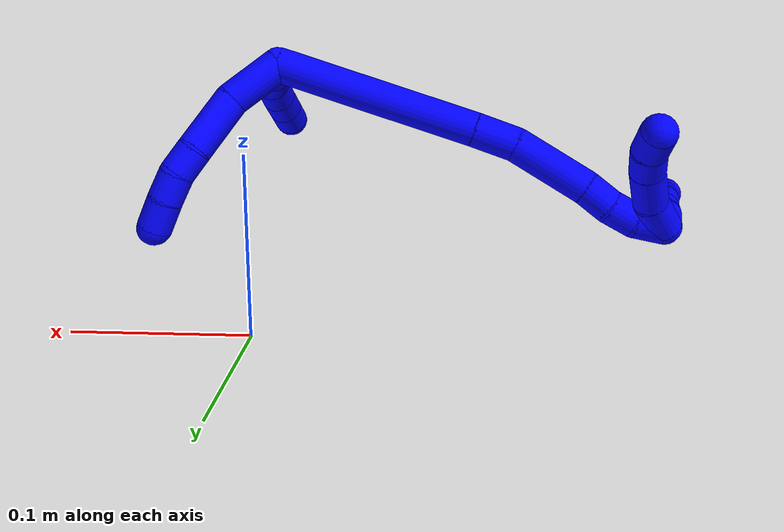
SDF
<sdf version="1.7">
 <world name="default">
  <model name="1">
   <static>0</static>
   <link name="1">
    <collision name="collision-cylinder-e_1_2_8">
     <pose>0.01848 0.000764 -0.009724 -3.06314 1.08515 -3.01159</pose>
     <geometry><cylinder><radius>0.0125</radius><length>0.041792</length></cylinder></geometry>
     <surface>
      <friction><ode><mu>1.16</mu><mu2>1.16</mu2><slip1>0</slip1><slip2>0</slip2></ode></friction>
      <contact><ode><kp>1e+06</kp><kd>1</kd><max_vel>0</max_vel><min_depth>0.001</min_depth></ode></contact>
     </surface>
    </collision>
    <visual name="visual-cylinder-e_1_2_8">
     <pose>0.01848 0.000764 -0.009724 -3.06314 1.08515 -3.01159</pose>
     <geometry><cylinder><radius>0.0125</radius><length>0.041792</length></cylinder></geometry>
     <material><ambient>0 0 1 1</ambient></material>
    </visual>
    <collision name="collision-cylinder-e_2_8_9">
     <pose>0.054802 -0.004232 -0.031572 2.69802 0.925812 2.29284</pose>
     <geometry><cylinder><radius>0.0125</radius><length>0.044657</length></cylinder></geometry>
     <surface>
      <friction><ode><mu>1.16</mu><mu2>1.16</mu2><slip1>0</slip1><slip2>0</slip2></ode></friction>
      <contact><ode><kp>1e+06</kp><kd>1</kd><max_vel>0</max_vel><min_depth>0.001</min_depth></ode></contact>
     </surface>
    </collision>
    <visual name="visual-cylinder-e_2_8_9">
     <pose>0.054802 -0.004232 -0.031572 2.69802 0.925812 2.29284</pose>
     <geometry><cylinder><radius>0.0125</radius><length>0.044657</length></cylinder></geometry>
     <material><ambient>0 0 1 1</ambient></material>
    </visual>
    <collision name="collision-cylinder-e_3_9_10">
     <pose>0.081734 -0.012491 -0.047685 2.58209 1.093 2.25915</pose>
     <geometry><cylinder><radius>0.0125</radius><length>0.02047</length></cylinder></geometry>
     <surface>
      <friction><ode><mu>1.16</mu><mu2>1.16</mu2><slip1>0</slip1><slip2>0</slip2></ode></friction>
      <contact><ode><kp>1e+06</kp><kd>1</kd><max_vel>0</max_vel><min_depth>0.001</min_depth></ode></contact>
     </surface>
    </collision>
    <visual name="visual-cylinder-e_3_9_10">
     <pose>0.081734 -0.012491 -0.047685 2.58209 1.093 2.25915</pose>
     <geometry><cylinder><radius>0.0125</radius><length>0.02047</length></cylinder></geometry>
     <material><ambient>0 0 1 1</ambient></material>
    </visual>
    <collision name="collision-cylinder-e_4_10_11">
     <pose>0.100137 -0.019161 -0.053563 1.99601 1.11384 1.5357</pose>
     <geometry><cylinder><radius>0.0125</radius><length>0.020759</length></cylinder></geometry>
     <surface>
      <friction><ode><mu>1.16</mu><mu2>1.16</mu2><slip1>0</slip1><slip2>0</slip2></ode></friction>
      <contact><ode><kp>1e+06</kp><kd>1</kd><max_vel>0</max_vel><min_depth>0.001</min_depth></ode></contact>
     </surface>
    </collision>
    <visual name="visual-cylinder-e_4_10_11">
     <pose>0.100137 -0.019161 -0.053563 1.99601 1.11384 1.5357</pose>
     <geometry><cylinder><radius>0.0125</radius><length>0.020759</length></cylinder></geometry>
     <material><ambient>0 0 1 1</ambient></material>
    </visual>
    <collision name="collision-cylinder-e_5_11_6">
     <pose>0.11956 -0.027998 -0.056243 1.73872 1.13298 1.29074</pose>
     <geometry><cylinder><radius>0.0125</radius><length>0.022323</length></cylinder></geometry>
     <surface>
      <friction><ode><mu>1.16</mu><mu2>1.16</mu2><slip1>0</slip1><slip2>0</slip2></ode></friction>
      <contact><ode><kp>1e+06</kp><kd>1</kd><max_vel>0</max_vel><min_depth>0.001</min_depth></ode></contact>
     </surface>
    </collision>
    <visual name="visual-cylinder-e_5_11_6">
     <pose>0.11956 -0.027998 -0.056243 1.73872 1.13298 1.29074</pose>
     <geometry><cylinder><radius>0.0125</radius><length>0.022323</length></cylinder></geometry>
     <material><ambient>0 0 1 1</ambient></material>
    </visual>
    <collision name="collision-cylinder-e_1_2_12">
     <pose>0.007157 7e-06 0.006985 -0.000953 0.797564 -0.000402</pose>
     <geometry><cylinder><radius>0.0125</radius><length>0.02</length></cylinder></geometry>
     <surface>
      <friction><ode><mu>1.16</mu><mu2>1.16</mu2><slip1>0</slip1><slip2>0</slip2></ode></friction>
      <contact><ode><kp>1e+06</kp><kd>1</kd><max_vel>0</max_vel><min_depth>0.001</min_depth></ode></contact>
     </surface>
    </collision>
    <visual name="visual-cylinder-e_1_2_12">
     <pose>0.007157 7e-06 0.006985 -0.000953 0.797564 -0.000402</pose>
     <geometry><cylinder><radius>0.0125</radius><length>0.02</length></cylinder></geometry>
     <material><ambient>0 0 1 1</ambient></material>
    </visual>
    <collision name="collision-cylinder-e_2_12_13">
     <pose>0.020176 -0.000851 0.022024 0.106895 0.626431 0.03465</pose>
     <geometry><cylinder><radius>0.0125</radius><length>0.02</length></cylinder></geometry>
     <surface>
      <friction><ode><mu>1.16</mu><mu2>1.16</mu2><slip1>0</slip1><slip2>0</slip2></ode></friction>
      <contact><ode><kp>1e+06</kp><kd>1</kd><max_vel>0</max_vel><min_depth>0.001</min_depth></ode></contact>
     </surface>
    </collision>
    <visual name="visual-cylinder-e_2_12_13">
     <pose>0.020176 -0.000851 0.022024 0.106895 0.626431 0.03465</pose>
     <geometry><cylinder><radius>0.0125</radius><length>0.02</length></cylinder></geometry>
     <material><ambient>0 0 1 1</ambient></material>
    </visual>
    <collision name="collision-cylinder-e_3_13_14">
     <pose>0.030696 -0.005456 0.038099 0.436419 0.484476 0.10947</pose>
     <geometry><cylinder><radius>0.0125</radius><length>0.02</length></cylinder></geometry>
     <surface>
      <friction><ode><mu>1.16</mu><mu2>1.16</mu2><slip1>0</slip1><slip2>0</slip2></ode></friction>
      <contact><ode><kp>1e+06</kp><kd>1</kd><max_vel>0</max_vel><min_depth>0.001</min_depth></ode></contact>
     </surface>
    </collision>
    <visual name="visual-cylinder-e_3_13_14">
     <pose>0.030696 -0.005456 0.038099 0.436419 0.484476 0.10947</pose>
     <geometry><cylinder><radius>0.0125</radius><length>0.02</length></cylinder></geometry>
     <material><ambient>0 0 1 1</ambient></material>
    </visual>
    <collision name="collision-cylinder-e_4_14_15">
     <pose>0.039768 -0.012936 0.054275 0.429954 0.457265 0.101534</pose>
     <geometry><cylinder><radius>0.0125</radius><length>0.02</length></cylinder></geometry>
     <surface>
      <friction><ode><mu>1.16</mu><mu2>1.16</mu2><slip1>0</slip1><slip2>0</slip2></ode></friction>
      <contact><ode><kp>1e+06</kp><kd>1</kd><max_vel>0</max_vel><min_depth>0.001</min_depth></ode></contact>
     </surface>
    </collision>
    <visual name="visual-cylinder-e_4_14_15">
     <pose>0.039768 -0.012936 0.054275 0.429954 0.457265 0.101534</pose>
     <geometry><cylinder><radius>0.0125</radius><length>0.02</length></cylinder></geometry>
     <material><ambient>0 0 1 1</ambient></material>
    </visual>
    <collision name="collision-cylinder-e_5_15_5">
     <pose>0.048616 -0.020631 0.070475 0.456888 0.459269 0.108592</pose>
     <geometry><cylinder><radius>0.0125</radius><length>0.02</length></cylinder></geometry>
     <surface>
      <friction><ode><mu>1.16</mu><mu2>1.16</mu2><slip1>0</slip1><slip2>0</slip2></ode></friction>
      <contact><ode><kp>1e+06</kp><kd>1</kd><max_vel>0</max_vel><min_depth>0.001</min_depth></ode></contact>
     </surface>
    </collision>
    <visual name="visual-cylinder-e_5_15_5">
     <pose>0.048616 -0.020631 0.070475 0.456888 0.459269 0.108592</pose>
     <geometry><cylinder><radius>0.0125</radius><length>0.02</length></cylinder></geometry>
     <material><ambient>0 0 1 1</ambient></material>
    </visual>
    <collision name="collision-cylinder-e_1_2_16">
     <pose>-0.037191 -0.063229 0.00939 1.42337 -0.526936 -0.457148</pose>
     <geometry><cylinder><radius>0.0125</radius><length>0.147908</length></cylinder></geometry>
     <surface>
      <friction><ode><mu>1.16</mu><mu2>1.16</mu2><slip1>0</slip1><slip2>0</slip2></ode></friction>
      <contact><ode><kp>1e+06</kp><kd>1</kd><max_vel>0</max_vel><min_depth>0.001</min_depth></ode></contact>
     </surface>
    </collision>
    <visual name="visual-cylinder-e_1_2_16">
     <pose>-0.037191 -0.063229 0.00939 1.42337 -0.526936 -0.457148</pose>
     <geometry><cylinder><radius>0.0125</radius><length>0.147908</length></cylinder></geometry>
     <material><ambient>0 0 1 1</ambient></material>
    </visual>
    <collision name="collision-cylinder-e_2_16_17">
     <pose>-0.081708 -0.1399 0.020968 1.40938 -0.493566 -0.42205</pose>
     <geometry><cylinder><radius>0.0125</radius><length>0.03093</length></cylinder></geometry>
     <surface>
      <friction><ode><mu>1.16</mu><mu2>1.16</mu2><slip1>0</slip1><slip2>0</slip2></ode></friction>
      <contact><ode><kp>1e+06</kp><kd>1</kd><max_vel>0</max_vel><min_depth>0.001</min_depth></ode></contact>
     </surface>
    </collision>
    <visual name="visual-cylinder-e_2_16_17">
     <pose>-0.081708 -0.1399 0.020968 1.40938 -0.493566 -0.42205</pose>
     <geometry><cylinder><radius>0.0125</radius><length>0.03093</length></cylinder></geometry>
     <material><ambient>0 0 1 1</ambient></material>
    </visual>
    <collision name="collision-cylinder-e_3_17_18">
     <pose>-0.097896 -0.181022 0.024732 1.51398 -0.309368 -0.292521</pose>
     <geometry><cylinder><radius>0.0125</radius><length>0.058212</length></cylinder></geometry>
     <surface>
      <friction><ode><mu>1.16</mu><mu2>1.16</mu2><slip1>0</slip1><slip2>0</slip2></ode></friction>
      <contact><ode><kp>1e+06</kp><kd>1</kd><max_vel>0</max_vel><min_depth>0.001</min_depth></ode></contact>
     </surface>
    </collision>
    <visual name="visual-cylinder-e_3_17_18">
     <pose>-0.097896 -0.181022 0.024732 1.51398 -0.309368 -0.292521</pose>
     <geometry><cylinder><radius>0.0125</radius><length>0.058212</length></cylinder></geometry>
     <material><ambient>0 0 1 1</ambient></material>
    </visual>
    <collision name="collision-cylinder-e_4_18_19">
     <pose>-0.108805 -0.219174 0.026453 1.55677 -0.19303 -0.190358</pose>
     <geometry><cylinder><radius>0.0125</radius><length>0.021345</length></cylinder></geometry>
     <surface>
      <friction><ode><mu>1.16</mu><mu2>1.16</mu2><slip1>0</slip1><slip2>0</slip2></ode></friction>
      <contact><ode><kp>1e+06</kp><kd>1</kd><max_vel>0</max_vel><min_depth>0.001</min_depth></ode></contact>
     </surface>
    </collision>
    <visual name="visual-cylinder-e_4_18_19">
     <pose>-0.108805 -0.219174 0.026453 1.55677 -0.19303 -0.190358</pose>
     <geometry><cylinder><radius>0.0125</radius><length>0.021345</length></cylinder></geometry>
     <material><ambient>0 0 1 1</ambient></material>
    </visual>
    <collision name="collision-cylinder-e_5_19_20">
     <pose>-0.114189 -0.239169 0.027823 1.44304 -0.334518 -0.294916</pose>
     <geometry><cylinder><radius>0.0125</radius><length>0.020326</length></cylinder></geometry>
     <surface>
      <friction><ode><mu>1.16</mu><mu2>1.16</mu2><slip1>0</slip1><slip2>0</slip2></ode></friction>
      <contact><ode><kp>1e+06</kp><kd>1</kd><max_vel>0</max_vel><min_depth>0.001</min_depth></ode></contact>
     </surface>
    </collision>
    <visual name="visual-cylinder-e_5_19_20">
     <pose>-0.114189 -0.239169 0.027823 1.44304 -0.334518 -0.294916</pose>
     <geometry><cylinder><radius>0.0125</radius><length>0.020326</length></cylinder></geometry>
     <material><ambient>0 0 1 1</ambient></material>
    </visual>
    <collision name="collision-cylinder-e_6_20_1">
     <pose>-0.123703 -0.257115 0.031065 1.33554 -0.619415 -0.494407</pose>
     <geometry><cylinder><radius>0.0125</radius><length>0.021279</length></cylinder></geometry>
     <surface>
      <friction><ode><mu>1.16</mu><mu2>1.16</mu2><slip1>0</slip1><slip2>0</slip2></ode></friction>
      <contact><ode><kp>1e+06</kp><kd>1</kd><max_vel>0</max_vel><min_depth>0.001</min_depth></ode></contact>
     </surface>
    </collision>
    <visual name="visual-cylinder-e_6_20_1">
     <pose>-0.123703 -0.257115 0.031065 1.33554 -0.619415 -0.494407</pose>
     <geometry><cylinder><radius>0.0125</radius><length>0.021279</length></cylinder></geometry>
     <material><ambient>0 0 1 1</ambient></material>
    </visual>
    <collision name="collision-cylinder-e_1_1_21">
     <pose>-0.133481 -0.254119 0.024475 -2.21678 -0.246691 0.487545</pose>
     <geometry><cylinder><radius>0.0125</radius><length>0.029497</length></cylinder></geometry>
     <surface>
      <friction><ode><mu>1.16</mu><mu2>1.16</mu2><slip1>0</slip1><slip2>0</slip2></ode></friction>
      <contact><ode><kp>1e+06</kp><kd>1</kd><max_vel>0</max_vel><min_depth>0.001</min_depth></ode></contact>
     </surface>
    </collision>
    <visual name="visual-cylinder-e_1_1_21">
     <pose>-0.133481 -0.254119 0.024475 -2.21678 -0.246691 0.487545</pose>
     <geometry><cylinder><radius>0.0125</radius><length>0.029497</length></cylinder></geometry>
     <material><ambient>0 0 1 1</ambient></material>
    </visual>
    <collision name="collision-cylinder-e_2_21_22">
     <pose>-0.144383 -0.232455 0.007658 -2.2463 -0.507557 0.990552</pose>
     <geometry><cylinder><radius>0.0125</radius><length>0.030038</length></cylinder></geometry>
     <surface>
      <friction><ode><mu>1.16</mu><mu2>1.16</mu2><slip1>0</slip1><slip2>0</slip2></ode></friction>
      <contact><ode><kp>1e+06</kp><kd>1</kd><max_vel>0</max_vel><min_depth>0.001</min_depth></ode></contact>
     </surface>
    </collision>
    <visual name="visual-cylinder-e_2_21_22">
     <pose>-0.144383 -0.232455 0.007658 -2.2463 -0.507557 0.990552</pose>
     <geometry><cylinder><radius>0.0125</radius><length>0.030038</length></cylinder></geometry>
     <material><ambient>0 0 1 1</ambient></material>
    </visual>
    <collision name="collision-cylinder-e_3_22_23">
     <pose>-0.157239 -0.216504 -0.006706 -2.39401 -0.584677 1.30896</pose>
     <geometry><cylinder><radius>0.0125</radius><length>0.020135</length></cylinder></geometry>
     <surface>
      <friction><ode><mu>1.16</mu><mu2>1.16</mu2><slip1>0</slip1><slip2>0</slip2></ode></friction>
      <contact><ode><kp>1e+06</kp><kd>1</kd><max_vel>0</max_vel><min_depth>0.001</min_depth></ode></contact>
     </surface>
    </collision>
    <visual name="visual-cylinder-e_3_22_23">
     <pose>-0.157239 -0.216504 -0.006706 -2.39401 -0.584677 1.30896</pose>
     <geometry><cylinder><radius>0.0125</radius><length>0.020135</length></cylinder></geometry>
     <material><ambient>0 0 1 1</ambient></material>
    </visual>
    <collision name="collision-cylinder-e_4_23_4">
     <pose>-0.169917 -0.207169 -0.019143 -2.61786 -0.776275 1.98112</pose>
     <geometry><cylinder><radius>0.0125</radius><length>0.02033</length></cylinder></geometry>
     <surface>
      <friction><ode><mu>1.16</mu><mu2>1.16</mu2><slip1>0</slip1><slip2>0</slip2></ode></friction>
      <contact><ode><kp>1e+06</kp><kd>1</kd><max_vel>0</max_vel><min_depth>0.001</min_depth></ode></contact>
     </surface>
    </collision>
    <visual name="visual-cylinder-e_4_23_4">
     <pose>-0.169917 -0.207169 -0.019143 -2.61786 -0.776275 1.98112</pose>
     <geometry><cylinder><radius>0.0125</radius><length>0.02033</length></cylinder></geometry>
     <material><ambient>0 0 1 1</ambient></material>
    </visual>
    <collision name="collision-cylinder-e_1_1_24">
     <pose>-0.130903 -0.263937 0.042902 -0.161784 -0.102501 0.008317</pose>
     <geometry><cylinder><radius>0.0125</radius><length>0.02</length></cylinder></geometry>
     <surface>
      <friction><ode><mu>1.16</mu><mu2>1.16</mu2><slip1>0</slip1><slip2>0</slip2></ode></friction>
      <contact><ode><kp>1e+06</kp><kd>1</kd><max_vel>0</max_vel><min_depth>0.001</min_depth></ode></contact>
     </surface>
    </collision>
    <visual name="visual-cylinder-e_1_1_24">
     <pose>-0.130903 -0.263937 0.042902 -0.161784 -0.102501 0.008317</pose>
     <geometry><cylinder><radius>0.0125</radius><length>0.02</length></cylinder></geometry>
     <material><ambient>0 0 1 1</ambient></material>
    </visual>
    <collision name="collision-cylinder-e_2_24_25">
     <pose>-0.131223 -0.261922 0.062686 -0.041307 0.070362 -0.001454</pose>
     <geometry><cylinder><radius>0.0125</radius><length>0.02</length></cylinder></geometry>
     <surface>
      <friction><ode><mu>1.16</mu><mu2>1.16</mu2><slip1>0</slip1><slip2>0</slip2></ode></friction>
      <contact><ode><kp>1e+06</kp><kd>1</kd><max_vel>0</max_vel><min_depth>0.001</min_depth></ode></contact>
     </surface>
    </collision>
    <visual name="visual-cylinder-e_2_24_25">
     <pose>-0.131223 -0.261922 0.062686 -0.041307 0.070362 -0.001454</pose>
     <geometry><cylinder><radius>0.0125</radius><length>0.02</length></cylinder></geometry>
     <material><ambient>0 0 1 1</ambient></material>
    </visual>
    <collision name="collision-cylinder-e_3_25_26">
     <pose>-0.130695 -0.261009 0.082639 -0.050197 -0.017482 0.000439</pose>
     <geometry><cylinder><radius>0.0125</radius><length>0.02</length></cylinder></geometry>
     <surface>
      <friction><ode><mu>1.16</mu><mu2>1.16</mu2><slip1>0</slip1><slip2>0</slip2></ode></friction>
      <contact><ode><kp>1e+06</kp><kd>1</kd><max_vel>0</max_vel><min_depth>0.001</min_depth></ode></contact>
     </surface>
    </collision>
    <visual name="visual-cylinder-e_3_25_26">
     <pose>-0.130695 -0.261009 0.082639 -0.050197 -0.017482 0.000439</pose>
     <geometry><cylinder><radius>0.0125</radius><length>0.02</length></cylinder></geometry>
     <material><ambient>0 0 1 1</ambient></material>
    </visual>
    <collision name="collision-cylinder-e_4_26_27">
     <pose>-0.129903 -0.260227 0.102574 -0.028174 0.096785 -0.001365</pose>
     <geometry><cylinder><radius>0.0125</radius><length>0.02</length></cylinder></geometry>
     <surface>
      <friction><ode><mu>1.16</mu><mu2>1.16</mu2><slip1>0</slip1><slip2>0</slip2></ode></friction>
      <contact><ode><kp>1e+06</kp><kd>1</kd><max_vel>0</max_vel><min_depth>0.001</min_depth></ode></contact>
     </surface>
    </collision>
    <visual name="visual-cylinder-e_4_26_27">
     <pose>-0.129903 -0.260227 0.102574 -0.028174 0.096785 -0.001365</pose>
     <geometry><cylinder><radius>0.0125</radius><length>0.02</length></cylinder></geometry>
     <material><ambient>0 0 1 1</ambient></material>
    </visual>
    <collision name="collision-cylinder-e_5_27_3">
     <pose>-0.129145 -0.262231 0.122257 0.230592 -0.02086 -0.002416</pose>
     <geometry><cylinder><radius>0.0125</radius><length>0.02</length></cylinder></geometry>
     <surface>
      <friction><ode><mu>1.16</mu><mu2>1.16</mu2><slip1>0</slip1><slip2>0</slip2></ode></friction>
      <contact><ode><kp>1e+06</kp><kd>1</kd><max_vel>0</max_vel><min_depth>0.001</min_depth></ode></contact>
     </surface>
    </collision>
    <visual name="visual-cylinder-e_5_27_3">
     <pose>-0.129145 -0.262231 0.122257 0.230592 -0.02086 -0.002416</pose>
     <geometry><cylinder><radius>0.0125</radius><length>0.02</length></cylinder></geometry>
     <material><ambient>0 0 1 1</ambient></material>
    </visual>
    <collision name="collision-sphere-3">
     <pose>-0.129354 -0.264516 0.13199 0 -0 0</pose>
     <geometry><sphere><radius>0.0125</radius></sphere></geometry>
     <surface>
      <friction><ode><mu>1.16</mu><mu2>1.16</mu2><slip1>0</slip1><slip2>0</slip2></ode></friction>
      <contact><ode><kp>1e+06</kp><kd>1</kd><max_vel>0</max_vel><min_depth>0.001</min_depth></ode></contact>
     </surface>
    </collision>
    <visual name="visual-sphere-3">
     <pose>-0.129354 -0.264516 0.13199 0 -0 0</pose>
     <geometry><sphere><radius>0.0125</radius></sphere></geometry>
     <material><ambient>0 0 1 1</ambient></material>
    </visual>
    <collision name="collision-sphere-27">
     <pose>-0.128937 -0.259946 0.112523 0 -0 0</pose>
     <geometry><sphere><radius>0.0125</radius></sphere></geometry>
     <surface>
      <friction><ode><mu>1.16</mu><mu2>1.16</mu2><slip1>0</slip1><slip2>0</slip2></ode></friction>
      <contact><ode><kp>1e+06</kp><kd>1</kd><max_vel>0</max_vel><min_depth>0.001</min_depth></ode></contact>
     </surface>
    </collision>
    <visual name="visual-sphere-27">
     <pose>-0.128937 -0.259946 0.112523 0 -0 0</pose>
     <geometry><sphere><radius>0.0125</radius></sphere></geometry>
     <material><ambient>0 0 1 1</ambient></material>
    </visual>
    <collision name="collision-sphere-26">
     <pose>-0.13087 -0.260507 0.092625 0 -0 0</pose>
     <geometry><sphere><radius>0.0125</radius></sphere></geometry>
     <surface>
      <friction><ode><mu>1.16</mu><mu2>1.16</mu2><slip1>0</slip1><slip2>0</slip2></ode></friction>
      <contact><ode><kp>1e+06</kp><kd>1</kd><max_vel>0</max_vel><min_depth>0.001</min_depth></ode></contact>
     </surface>
    </collision>
    <visual name="visual-sphere-26">
     <pose>-0.13087 -0.260507 0.092625 0 -0 0</pose>
     <geometry><sphere><radius>0.0125</radius></sphere></geometry>
     <material><ambient>0 0 1 1</ambient></material>
    </visual>
    <collision name="collision-sphere-25">
     <pose>-0.13052 -0.26151 0.072653 0 -0 0</pose>
     <geometry><sphere><radius>0.0125</radius></sphere></geometry>
     <surface>
      <friction><ode><mu>1.16</mu><mu2>1.16</mu2><slip1>0</slip1><slip2>0</slip2></ode></friction>
      <contact><ode><kp>1e+06</kp><kd>1</kd><max_vel>0</max_vel><min_depth>0.001</min_depth></ode></contact>
     </surface>
    </collision>
    <visual name="visual-sphere-25">
     <pose>-0.13052 -0.26151 0.072653 0 -0 0</pose>
     <geometry><sphere><radius>0.0125</radius></sphere></geometry>
     <material><ambient>0 0 1 1</ambient></material>
    </visual>
    <collision name="collision-sphere-24">
     <pose>-0.131926 -0.262334 0.05272 0 -0 0</pose>
     <geometry><sphere><radius>0.0125</radius></sphere></geometry>
     <surface>
      <friction><ode><mu>1.16</mu><mu2>1.16</mu2><slip1>0</slip1><slip2>0</slip2></ode></friction>
      <contact><ode><kp>1e+06</kp><kd>1</kd><max_vel>0</max_vel><min_depth>0.001</min_depth></ode></contact>
     </surface>
    </collision>
    <visual name="visual-sphere-24">
     <pose>-0.131926 -0.262334 0.05272 0 -0 0</pose>
     <geometry><sphere><radius>0.0125</radius></sphere></geometry>
     <material><ambient>0 0 1 1</ambient></material>
    </visual>
    <collision name="collision-sphere-4">
     <pose>-0.177039 -0.203542 -0.025424 0 -0 0</pose>
     <geometry><sphere><radius>0.0125</radius></sphere></geometry>
     <surface>
      <friction><ode><mu>1.16</mu><mu2>1.16</mu2><slip1>0</slip1><slip2>0</slip2></ode></friction>
      <contact><ode><kp>1e+06</kp><kd>1</kd><max_vel>0</max_vel><min_depth>0.001</min_depth></ode></contact>
     </surface>
    </collision>
    <visual name="visual-sphere-4">
     <pose>-0.177039 -0.203542 -0.025424 0 -0 0</pose>
     <geometry><sphere><radius>0.0125</radius></sphere></geometry>
     <material><ambient>0 0 1 1</ambient></material>
    </visual>
    <collision name="collision-sphere-23">
     <pose>-0.162796 -0.210797 -0.012862 0 -0 0</pose>
     <geometry><sphere><radius>0.0125</radius></sphere></geometry>
     <surface>
      <friction><ode><mu>1.16</mu><mu2>1.16</mu2><slip1>0</slip1><slip2>0</slip2></ode></friction>
      <contact><ode><kp>1e+06</kp><kd>1</kd><max_vel>0</max_vel><min_depth>0.001</min_depth></ode></contact>
     </surface>
    </collision>
    <visual name="visual-sphere-23">
     <pose>-0.162796 -0.210797 -0.012862 0 -0 0</pose>
     <geometry><sphere><radius>0.0125</radius></sphere></geometry>
     <material><ambient>0 0 1 1</ambient></material>
    </visual>
    <collision name="collision-sphere-22">
     <pose>-0.151683 -0.222212 -0.00055 0 -0 0</pose>
     <geometry><sphere><radius>0.0125</radius></sphere></geometry>
     <surface>
      <friction><ode><mu>1.16</mu><mu2>1.16</mu2><slip1>0</slip1><slip2>0</slip2></ode></friction>
      <contact><ode><kp>1e+06</kp><kd>1</kd><max_vel>0</max_vel><min_depth>0.001</min_depth></ode></contact>
     </surface>
    </collision>
    <visual name="visual-sphere-22">
     <pose>-0.151683 -0.222212 -0.00055 0 -0 0</pose>
     <geometry><sphere><radius>0.0125</radius></sphere></geometry>
     <material><ambient>0 0 1 1</ambient></material>
    </visual>
    <collision name="collision-sphere-21">
     <pose>-0.137083 -0.242698 0.015865 0 -0 0</pose>
     <geometry><sphere><radius>0.0125</radius></sphere></geometry>
     <surface>
      <friction><ode><mu>1.16</mu><mu2>1.16</mu2><slip1>0</slip1><slip2>0</slip2></ode></friction>
      <contact><ode><kp>1e+06</kp><kd>1</kd><max_vel>0</max_vel><min_depth>0.001</min_depth></ode></contact>
     </surface>
    </collision>
    <visual name="visual-sphere-21">
     <pose>-0.137083 -0.242698 0.015865 0 -0 0</pose>
     <geometry><sphere><radius>0.0125</radius></sphere></geometry>
     <material><ambient>0 0 1 1</ambient></material>
    </visual>
    <collision name="collision-sphere-1">
     <pose>-0.12988 -0.265539 0.033084 0 -0 0</pose>
     <geometry><sphere><radius>0.0125</radius></sphere></geometry>
     <surface>
      <friction><ode><mu>1.16</mu><mu2>1.16</mu2><slip1>0</slip1><slip2>0</slip2></ode></friction>
      <contact><ode><kp>1e+06</kp><kd>1</kd><max_vel>0</max_vel><min_depth>0.001</min_depth></ode></contact>
     </surface>
    </collision>
    <visual name="visual-sphere-1">
     <pose>-0.12988 -0.265539 0.033084 0 -0 0</pose>
     <geometry><sphere><radius>0.0125</radius></sphere></geometry>
     <material><ambient>0 0 1 1</ambient></material>
    </visual>
    <collision name="collision-sphere-6">
     <pose>0.129669 -0.032663 -0.057034 0 -0 0</pose>
     <geometry><sphere><radius>0.0125</radius></sphere></geometry>
     <surface>
      <friction><ode><mu>1.16</mu><mu2>1.16</mu2><slip1>0</slip1><slip2>0</slip2></ode></friction>
      <contact><ode><kp>1e+06</kp><kd>1</kd><max_vel>0</max_vel><min_depth>0.001</min_depth></ode></contact>
     </surface>
    </collision>
    <visual name="visual-sphere-6">
     <pose>0.129669 -0.032663 -0.057034 0 -0 0</pose>
     <geometry><sphere><radius>0.0125</radius></sphere></geometry>
     <material><ambient>0 0 1 1</ambient></material>
    </visual>
    <collision name="collision-sphere-11">
     <pose>0.109451 -0.023333 -0.055452 0 -0 0</pose>
     <geometry><sphere><radius>0.0125</radius></sphere></geometry>
     <surface>
      <friction><ode><mu>1.16</mu><mu2>1.16</mu2><slip1>0</slip1><slip2>0</slip2></ode></friction>
      <contact><ode><kp>1e+06</kp><kd>1</kd><max_vel>0</max_vel><min_depth>0.001</min_depth></ode></contact>
     </surface>
    </collision>
    <visual name="visual-sphere-11">
     <pose>0.109451 -0.023333 -0.055452 0 -0 0</pose>
     <geometry><sphere><radius>0.0125</radius></sphere></geometry>
     <material><ambient>0 0 1 1</ambient></material>
    </visual>
    <collision name="collision-sphere-10">
     <pose>0.090823 -0.014989 -0.051674 0 -0 0</pose>
     <geometry><sphere><radius>0.0125</radius></sphere></geometry>
     <surface>
      <friction><ode><mu>1.16</mu><mu2>1.16</mu2><slip1>0</slip1><slip2>0</slip2></ode></friction>
      <contact><ode><kp>1e+06</kp><kd>1</kd><max_vel>0</max_vel><min_depth>0.001</min_depth></ode></contact>
     </surface>
    </collision>
    <visual name="visual-sphere-10">
     <pose>0.090823 -0.014989 -0.051674 0 -0 0</pose>
     <geometry><sphere><radius>0.0125</radius></sphere></geometry>
     <material><ambient>0 0 1 1</ambient></material>
    </visual>
    <collision name="collision-sphere-9">
     <pose>0.072645 -0.009993 -0.043696 0 -0 0</pose>
     <geometry><sphere><radius>0.0125</radius></sphere></geometry>
     <surface>
      <friction><ode><mu>1.16</mu><mu2>1.16</mu2><slip1>0</slip1><slip2>0</slip2></ode></friction>
      <contact><ode><kp>1e+06</kp><kd>1</kd><max_vel>0</max_vel><min_depth>0.001</min_depth></ode></contact>
     </surface>
    </collision>
    <visual name="visual-sphere-9">
     <pose>0.072645 -0.009993 -0.043696 0 -0 0</pose>
     <geometry><sphere><radius>0.0125</radius></sphere></geometry>
     <material><ambient>0 0 1 1</ambient></material>
    </visual>
    <collision name="collision-sphere-2">
     <geometry><sphere><radius>0.0125</radius></sphere></geometry>
     <surface>
      <friction><ode><mu>1.16</mu><mu2>1.16</mu2><slip1>0</slip1><slip2>0</slip2></ode></friction>
      <contact><ode><kp>1e+06</kp><kd>1</kd><max_vel>0</max_vel><min_depth>0.001</min_depth></ode></contact>
     </surface>
    </collision>
    <visual name="visual-sphere-2">
     <geometry><sphere><radius>0.0125</radius></sphere></geometry>
     <material><ambient>0 0 1 1</ambient></material>
    </visual>
    <collision name="collision-sphere-19">
     <pose>-0.110853 -0.229647 0.0266 0 -0 0</pose>
     <geometry><sphere><radius>0.0125</radius></sphere></geometry>
     <surface>
      <friction><ode><mu>1.16</mu><mu2>1.16</mu2><slip1>0</slip1><slip2>0</slip2></ode></friction>
      <contact><ode><kp>1e+06</kp><kd>1</kd><max_vel>0</max_vel><min_depth>0.001</min_depth></ode></contact>
     </surface>
    </collision>
    <visual name="visual-sphere-19">
     <pose>-0.110853 -0.229647 0.0266 0 -0 0</pose>
     <geometry><sphere><radius>0.0125</radius></sphere></geometry>
     <material><ambient>0 0 1 1</ambient></material>
    </visual>
    <collision name="collision-sphere-8">
     <pose>0.03696 0.001529 -0.019448 0 -0 0</pose>
     <geometry><sphere><radius>0.0125</radius></sphere></geometry>
     <surface>
      <friction><ode><mu>1.16</mu><mu2>1.16</mu2><slip1>0</slip1><slip2>0</slip2></ode></friction>
      <contact><ode><kp>1e+06</kp><kd>1</kd><max_vel>0</max_vel><min_depth>0.001</min_depth></ode></contact>
     </surface>
    </collision>
    <visual name="visual-sphere-8">
     <pose>0.03696 0.001529 -0.019448 0 -0 0</pose>
     <geometry><sphere><radius>0.0125</radius></sphere></geometry>
     <material><ambient>0 0 1 1</ambient></material>
    </visual>
    <collision name="collision-sphere-12">
     <pose>0.014313 1.3e-05 0.013969 0 -0 0</pose>
     <geometry><sphere><radius>0.0125</radius></sphere></geometry>
     <surface>
      <friction><ode><mu>1.16</mu><mu2>1.16</mu2><slip1>0</slip1><slip2>0</slip2></ode></friction>
      <contact><ode><kp>1e+06</kp><kd>1</kd><max_vel>0</max_vel><min_depth>0.001</min_depth></ode></contact>
     </surface>
    </collision>
    <visual name="visual-sphere-12">
     <pose>0.014313 1.3e-05 0.013969 0 -0 0</pose>
     <geometry><sphere><radius>0.0125</radius></sphere></geometry>
     <material><ambient>0 0 1 1</ambient></material>
    </visual>
    <collision name="collision-sphere-13">
     <pose>0.026038 -0.001715 0.030079 0 -0 0</pose>
     <geometry><sphere><radius>0.0125</radius></sphere></geometry>
     <surface>
      <friction><ode><mu>1.16</mu><mu2>1.16</mu2><slip1>0</slip1><slip2>0</slip2></ode></friction>
      <contact><ode><kp>1e+06</kp><kd>1</kd><max_vel>0</max_vel><min_depth>0.001</min_depth></ode></contact>
     </surface>
    </collision>
    <visual name="visual-sphere-13">
     <pose>0.026038 -0.001715 0.030079 0 -0 0</pose>
     <geometry><sphere><radius>0.0125</radius></sphere></geometry>
     <material><ambient>0 0 1 1</ambient></material>
    </visual>
    <collision name="collision-sphere-14">
     <pose>0.035353 -0.009196 0.046119 0 -0 0</pose>
     <geometry><sphere><radius>0.0125</radius></sphere></geometry>
     <surface>
      <friction><ode><mu>1.16</mu><mu2>1.16</mu2><slip1>0</slip1><slip2>0</slip2></ode></friction>
      <contact><ode><kp>1e+06</kp><kd>1</kd><max_vel>0</max_vel><min_depth>0.001</min_depth></ode></contact>
     </surface>
    </collision>
    <visual name="visual-sphere-14">
     <pose>0.035353 -0.009196 0.046119 0 -0 0</pose>
     <geometry><sphere><radius>0.0125</radius></sphere></geometry>
     <material><ambient>0 0 1 1</ambient></material>
    </visual>
    <collision name="collision-sphere-15">
     <pose>0.044183 -0.016677 0.062431 0 -0 0</pose>
     <geometry><sphere><radius>0.0125</radius></sphere></geometry>
     <surface>
      <friction><ode><mu>1.16</mu><mu2>1.16</mu2><slip1>0</slip1><slip2>0</slip2></ode></friction>
      <contact><ode><kp>1e+06</kp><kd>1</kd><max_vel>0</max_vel><min_depth>0.001</min_depth></ode></contact>
     </surface>
    </collision>
    <visual name="visual-sphere-15">
     <pose>0.044183 -0.016677 0.062431 0 -0 0</pose>
     <geometry><sphere><radius>0.0125</radius></sphere></geometry>
     <material><ambient>0 0 1 1</ambient></material>
    </visual>
    <collision name="collision-sphere-5">
     <pose>0.053049 -0.024585 0.078519 0 -0 0</pose>
     <geometry><sphere><radius>0.0125</radius></sphere></geometry>
     <surface>
      <friction><ode><mu>1.16</mu><mu2>1.16</mu2><slip1>0</slip1><slip2>0</slip2></ode></friction>
      <contact><ode><kp>1e+06</kp><kd>1</kd><max_vel>0</max_vel><min_depth>0.001</min_depth></ode></contact>
     </surface>
    </collision>
    <visual name="visual-sphere-5">
     <pose>0.053049 -0.024585 0.078519 0 -0 0</pose>
     <geometry><sphere><radius>0.0125</radius></sphere></geometry>
     <material><ambient>0 0 1 1</ambient></material>
    </visual>
    <collision name="collision-sphere-16">
     <pose>-0.074381 -0.126458 0.018779 0 -0 0</pose>
     <geometry><sphere><radius>0.0125</radius></sphere></geometry>
     <surface>
      <friction><ode><mu>1.16</mu><mu2>1.16</mu2><slip1>0</slip1><slip2>0</slip2></ode></friction>
      <contact><ode><kp>1e+06</kp><kd>1</kd><max_vel>0</max_vel><min_depth>0.001</min_depth></ode></contact>
     </surface>
    </collision>
    <visual name="visual-sphere-16">
     <pose>-0.074381 -0.126458 0.018779 0 -0 0</pose>
     <geometry><sphere><radius>0.0125</radius></sphere></geometry>
     <material><ambient>0 0 1 1</ambient></material>
    </visual>
    <collision name="collision-sphere-17">
     <pose>-0.089035 -0.153343 0.023157 0 -0 0</pose>
     <geometry><sphere><radius>0.0125</radius></sphere></geometry>
     <surface>
      <friction><ode><mu>1.16</mu><mu2>1.16</mu2><slip1>0</slip1><slip2>0</slip2></ode></friction>
      <contact><ode><kp>1e+06</kp><kd>1</kd><max_vel>0</max_vel><min_depth>0.001</min_depth></ode></contact>
     </surface>
    </collision>
    <visual name="visual-sphere-17">
     <pose>-0.089035 -0.153343 0.023157 0 -0 0</pose>
     <geometry><sphere><radius>0.0125</radius></sphere></geometry>
     <material><ambient>0 0 1 1</ambient></material>
    </visual>
    <collision name="collision-sphere-18">
     <pose>-0.106758 -0.208701 0.026306 0 -0 0</pose>
     <geometry><sphere><radius>0.0125</radius></sphere></geometry>
     <surface>
      <friction><ode><mu>1.16</mu><mu2>1.16</mu2><slip1>0</slip1><slip2>0</slip2></ode></friction>
      <contact><ode><kp>1e+06</kp><kd>1</kd><max_vel>0</max_vel><min_depth>0.001</min_depth></ode></contact>
     </surface>
    </collision>
    <visual name="visual-sphere-18">
     <pose>-0.106758 -0.208701 0.026306 0 -0 0</pose>
     <geometry><sphere><radius>0.0125</radius></sphere></geometry>
     <material><ambient>0 0 1 1</ambient></material>
    </visual>
    <collision name="collision-sphere-20">
     <pose>-0.117526 -0.24869 0.029046 0 -0 0</pose>
     <geometry><sphere><radius>0.0125</radius></sphere></geometry>
     <surface>
      <friction><ode><mu>1.16</mu><mu2>1.16</mu2><slip1>0</slip1><slip2>0</slip2></ode></friction>
      <contact><ode><kp>1e+06</kp><kd>1</kd><max_vel>0</max_vel><min_depth>0.001</min_depth></ode></contact>
     </surface>
    </collision>
    <visual name="visual-sphere-20">
     <pose>-0.117526 -0.24869 0.029046 0 -0 0</pose>
     <geometry><sphere><radius>0.0125</radius></sphere></geometry>
     <material><ambient>0 0 1 1</ambient></material>
    </visual>
    <inertial>
     <pose>-0.048488 -0.120928 0.016846 0 -0 0</pose>
     <mass>0.75</mass>
     <inertia>
      <ixx>0.000148</ixx>
      <ixy>0</ixy>
      <ixz>0</ixz>
      <iyy>1.4e-05</iyy>
      <iyz>0</iyz>
      <izz>0.000397</izz>
     </inertia>
    </inertial>
   </link>
   <pose>0.020718 -0.207206 0.12239 1.57614 0.734141 -0.196104</pose>
  </model>
 </world>
</sdf>
